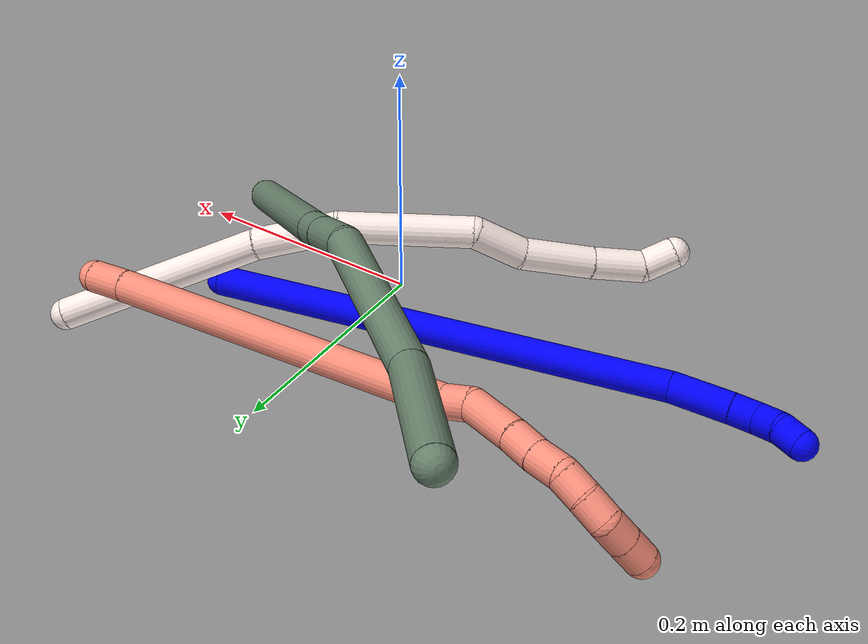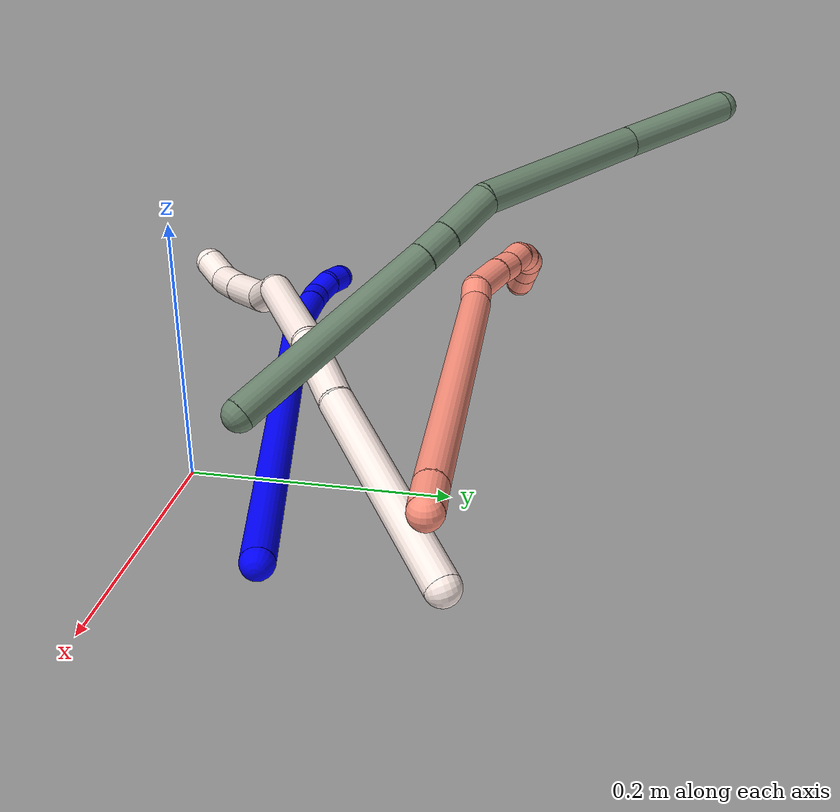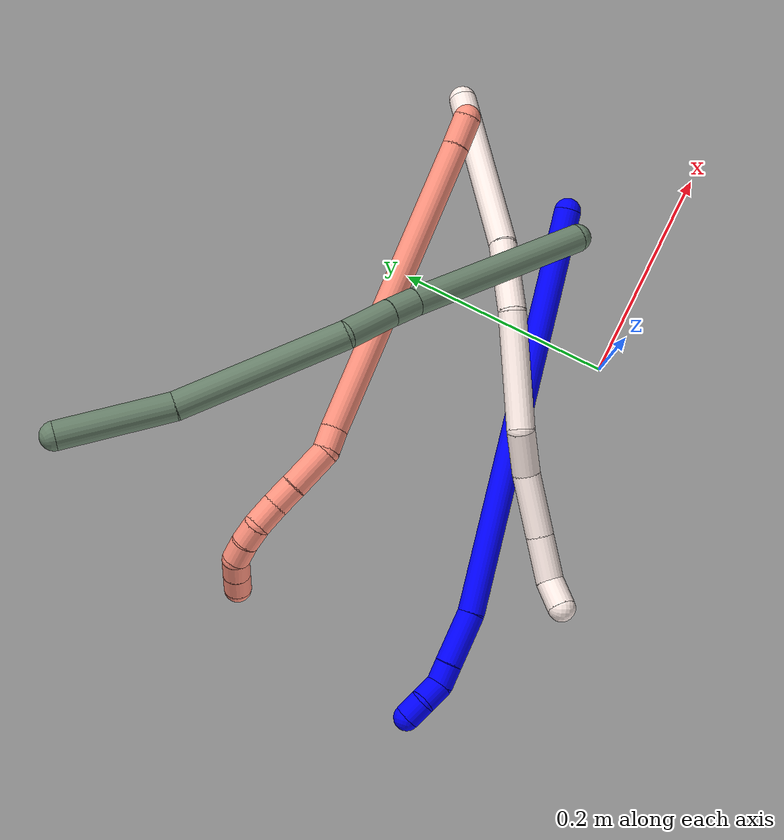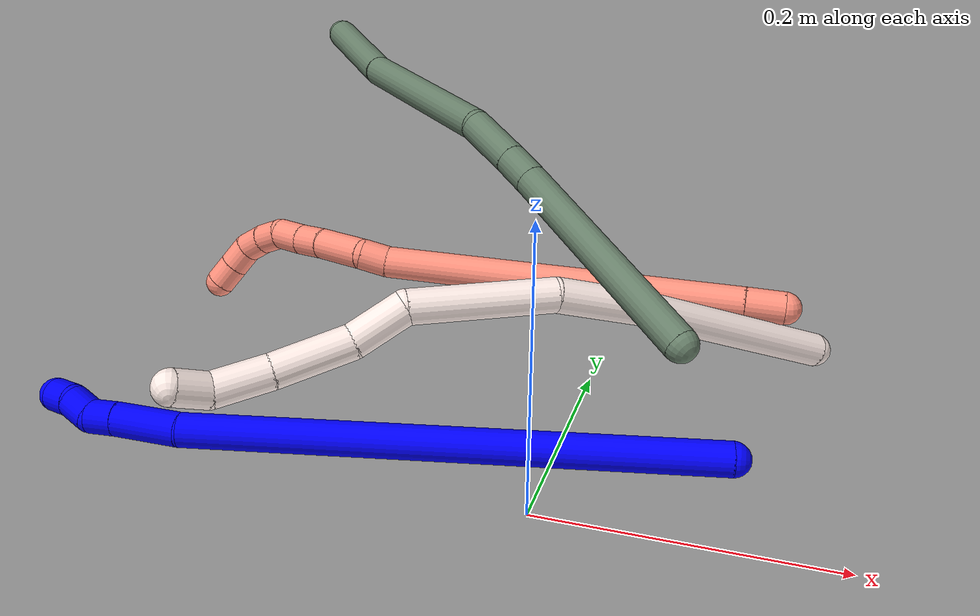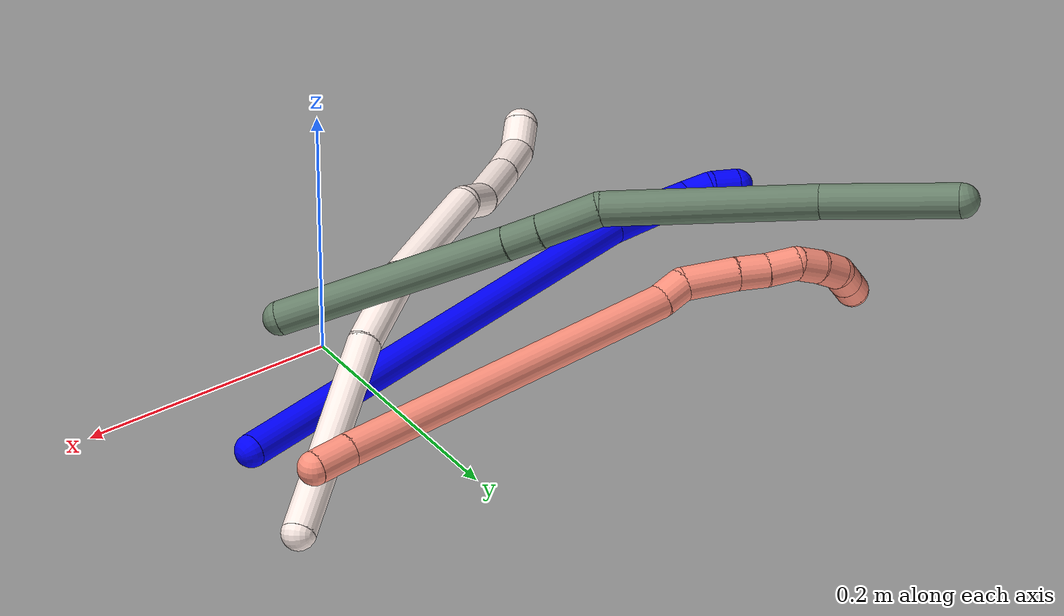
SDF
<sdf version="1.7">
 <world name="default">
  <model name="1">
   <static>0</static>
   <link name="1">
    <collision name="collision-cylinder-e_1_1_4">
     <pose>-0.014626 -0.003808 0.1927 0.019758 -0.075741 -0.000749</pose>
     <geometry><cylinder><radius>0.0125</radius><length>0.386584</length></cylinder></geometry>
     <surface>
      <friction><ode><mu>1.16</mu><mu2>1.16</mu2><slip1>0</slip1><slip2>0</slip2></ode></friction>
      <contact><ode><kp>1e+06</kp><kd>1</kd><max_vel>0</max_vel><min_depth>0.001</min_depth></ode></contact>
     </surface>
    </collision>
    <visual name="visual-cylinder-e_1_1_4">
     <pose>-0.014626 -0.003808 0.1927 0.019758 -0.075741 -0.000749</pose>
     <geometry><cylinder><radius>0.0125</radius><length>0.386584</length></cylinder></geometry>
     <material><ambient>0 0 1 1</ambient></material>
    </visual>
    <collision name="collision-cylinder-e_2_4_5">
     <pose>-0.027464 -0.005279 0.410327 -0.093455 0.071302 -0.003336</pose>
     <geometry><cylinder><radius>0.0125</radius><length>0.0502</length></cylinder></geometry>
     <surface>
      <friction><ode><mu>1.16</mu><mu2>1.16</mu2><slip1>0</slip1><slip2>0</slip2></ode></friction>
      <contact><ode><kp>1e+06</kp><kd>1</kd><max_vel>0</max_vel><min_depth>0.001</min_depth></ode></contact>
     </surface>
    </collision>
    <visual name="visual-cylinder-e_2_4_5">
     <pose>-0.027464 -0.005279 0.410327 -0.093455 0.071302 -0.003336</pose>
     <geometry><cylinder><radius>0.0125</radius><length>0.0502</length></cylinder></geometry>
     <material><ambient>0 0 1 1</ambient></material>
    </visual>
    <collision name="collision-cylinder-e_3_5_6">
     <pose>-0.025376 -0.001631 0.445723 -0.124664 0.028454 -0.001776</pose>
     <geometry><cylinder><radius>0.0125</radius><length>0.02111</length></cylinder></geometry>
     <surface>
      <friction><ode><mu>1.16</mu><mu2>1.16</mu2><slip1>0</slip1><slip2>0</slip2></ode></friction>
      <contact><ode><kp>1e+06</kp><kd>1</kd><max_vel>0</max_vel><min_depth>0.001</min_depth></ode></contact>
     </surface>
    </collision>
    <visual name="visual-cylinder-e_3_5_6">
     <pose>-0.025376 -0.001631 0.445723 -0.124664 0.028454 -0.001776</pose>
     <geometry><cylinder><radius>0.0125</radius><length>0.02111</length></cylinder></geometry>
     <material><ambient>0 0 1 1</ambient></material>
    </visual>
    <collision name="collision-cylinder-e_4_6_7">
     <pose>-0.019667 0.001277 0.465626 -0.167641 0.514419 -0.044192</pose>
     <geometry><cylinder><radius>0.0125</radius><length>0.021984</length></cylinder></geometry>
     <surface>
      <friction><ode><mu>1.16</mu><mu2>1.16</mu2><slip1>0</slip1><slip2>0</slip2></ode></friction>
      <contact><ode><kp>1e+06</kp><kd>1</kd><max_vel>0</max_vel><min_depth>0.001</min_depth></ode></contact>
     </surface>
    </collision>
    <visual name="visual-cylinder-e_4_6_7">
     <pose>-0.019667 0.001277 0.465626 -0.167641 0.514419 -0.044192</pose>
     <geometry><cylinder><radius>0.0125</radius><length>0.021984</length></cylinder></geometry>
     <material><ambient>0 0 1 1</ambient></material>
    </visual>
    <collision name="collision-cylinder-e_5_7_2">
     <pose>-0.011548 0.006767 0.483935 -0.413401 0.272726 -0.057531</pose>
     <geometry><cylinder><radius>0.0125</radius><length>0.020123</length></cylinder></geometry>
     <surface>
      <friction><ode><mu>1.16</mu><mu2>1.16</mu2><slip1>0</slip1><slip2>0</slip2></ode></friction>
      <contact><ode><kp>1e+06</kp><kd>1</kd><max_vel>0</max_vel><min_depth>0.001</min_depth></ode></contact>
     </surface>
    </collision>
    <visual name="visual-cylinder-e_5_7_2">
     <pose>-0.011548 0.006767 0.483935 -0.413401 0.272726 -0.057531</pose>
     <geometry><cylinder><radius>0.0125</radius><length>0.020123</length></cylinder></geometry>
     <material><ambient>0 0 1 1</ambient></material>
    </visual>
    <collision name="collision-sphere-2">
     <pose>-0.008838 0.010659 0.492808 0 -0 0</pose>
     <geometry><sphere><radius>0.0125</radius></sphere></geometry>
     <surface>
      <friction><ode><mu>1.16</mu><mu2>1.16</mu2><slip1>0</slip1><slip2>0</slip2></ode></friction>
      <contact><ode><kp>1e+06</kp><kd>1</kd><max_vel>0</max_vel><min_depth>0.001</min_depth></ode></contact>
     </surface>
    </collision>
    <visual name="visual-sphere-2">
     <pose>-0.008838 0.010659 0.492808 0 -0 0</pose>
     <geometry><sphere><radius>0.0125</radius></sphere></geometry>
     <material><ambient>0 0 1 1</ambient></material>
    </visual>
    <collision name="collision-sphere-7">
     <pose>-0.014259 0.002874 0.475062 0 -0 0</pose>
     <geometry><sphere><radius>0.0125</radius></sphere></geometry>
     <surface>
      <friction><ode><mu>1.16</mu><mu2>1.16</mu2><slip1>0</slip1><slip2>0</slip2></ode></friction>
      <contact><ode><kp>1e+06</kp><kd>1</kd><max_vel>0</max_vel><min_depth>0.001</min_depth></ode></contact>
     </surface>
    </collision>
    <visual name="visual-sphere-7">
     <pose>-0.014259 0.002874 0.475062 0 -0 0</pose>
     <geometry><sphere><radius>0.0125</radius></sphere></geometry>
     <material><ambient>0 0 1 1</ambient></material>
    </visual>
    <collision name="collision-sphere-6">
     <pose>-0.025075 -0.000319 0.456191 0 -0 0</pose>
     <geometry><sphere><radius>0.0125</radius></sphere></geometry>
     <surface>
      <friction><ode><mu>1.16</mu><mu2>1.16</mu2><slip1>0</slip1><slip2>0</slip2></ode></friction>
      <contact><ode><kp>1e+06</kp><kd>1</kd><max_vel>0</max_vel><min_depth>0.001</min_depth></ode></contact>
     </surface>
    </collision>
    <visual name="visual-sphere-6">
     <pose>-0.025075 -0.000319 0.456191 0 -0 0</pose>
     <geometry><sphere><radius>0.0125</radius></sphere></geometry>
     <material><ambient>0 0 1 1</ambient></material>
    </visual>
    <collision name="collision-sphere-5">
     <pose>-0.025676 -0.002943 0.435254 0 -0 0</pose>
     <geometry><sphere><radius>0.0125</radius></sphere></geometry>
     <surface>
      <friction><ode><mu>1.16</mu><mu2>1.16</mu2><slip1>0</slip1><slip2>0</slip2></ode></friction>
      <contact><ode><kp>1e+06</kp><kd>1</kd><max_vel>0</max_vel><min_depth>0.001</min_depth></ode></contact>
     </surface>
    </collision>
    <visual name="visual-sphere-5">
     <pose>-0.025676 -0.002943 0.435254 0 -0 0</pose>
     <geometry><sphere><radius>0.0125</radius></sphere></geometry>
     <material><ambient>0 0 1 1</ambient></material>
    </visual>
    <collision name="collision-sphere-1">
     <geometry><sphere><radius>0.0125</radius></sphere></geometry>
     <surface>
      <friction><ode><mu>1.16</mu><mu2>1.16</mu2><slip1>0</slip1><slip2>0</slip2></ode></friction>
      <contact><ode><kp>1e+06</kp><kd>1</kd><max_vel>0</max_vel><min_depth>0.001</min_depth></ode></contact>
     </surface>
    </collision>
    <visual name="visual-sphere-1">
     <geometry><sphere><radius>0.0125</radius></sphere></geometry>
     <material><ambient>0 0 1 1</ambient></material>
    </visual>
    <collision name="collision-sphere-4">
     <pose>-0.029252 -0.007616 0.3854 0 -0 0</pose>
     <geometry><sphere><radius>0.0125</radius></sphere></geometry>
     <surface>
      <friction><ode><mu>1.16</mu><mu2>1.16</mu2><slip1>0</slip1><slip2>0</slip2></ode></friction>
      <contact><ode><kp>1e+06</kp><kd>1</kd><max_vel>0</max_vel><min_depth>0.001</min_depth></ode></contact>
     </surface>
    </collision>
    <visual name="visual-sphere-4">
     <pose>-0.029252 -0.007616 0.3854 0 -0 0</pose>
     <geometry><sphere><radius>0.0125</radius></sphere></geometry>
     <material><ambient>0 0 1 1</ambient></material>
    </visual>
    <inertial>
     <pose>-0.016467 -0.003214 0.248953 0 -0 0</pose>
     <mass>0.5</mass>
     <inertia>
      <ixx>0.004828</ixx>
      <ixy>0</ixy>
      <ixz>0</ixz>
      <iyy>0.004843</iyy>
      <iyz>0</iyz>
      <izz>0.000495</izz>
     </inertia>
    </inertial>
   </link>
   <pose>0.120354 0.092074 0.011491 -1.52139 -0.738833 1.68665</pose>
  </model>
  <model name="11">
   <static>0</static>
   <link name="11">
    <collision name="collision-cylinder-e_1_1_4">
     <pose>-0.03276 -0.073902 -0.008542 1.68587 -0.414803 -0.463804</pose>
     <geometry><cylinder><radius>0.0125</radius><length>0.162574</length></cylinder></geometry>
     <surface>
      <friction><ode><mu>1.16</mu><mu2>1.16</mu2><slip1>0</slip1><slip2>0</slip2></ode></friction>
      <contact><ode><kp>1e+06</kp><kd>1</kd><max_vel>0</max_vel><min_depth>0.001</min_depth></ode></contact>
     </surface>
    </collision>
    <visual name="visual-cylinder-e_1_1_4">
     <pose>-0.03276 -0.073902 -0.008542 1.68587 -0.414803 -0.463804</pose>
     <geometry><cylinder><radius>0.0125</radius><length>0.162574</length></cylinder></geometry>
     <material><ambient>1 0.933333 0.909804 1</ambient></material>
    </visual>
    <collision name="collision-cylinder-e_2_4_5">
     <pose>-0.08274 -0.17603 -0.018203 1.61043 -0.547458 -0.568447</pose>
     <geometry><cylinder><radius>0.0125</radius><length>0.066169</length></cylinder></geometry>
     <surface>
      <friction><ode><mu>1.16</mu><mu2>1.16</mu2><slip1>0</slip1><slip2>0</slip2></ode></friction>
      <contact><ode><kp>1e+06</kp><kd>1</kd><max_vel>0</max_vel><min_depth>0.001</min_depth></ode></contact>
     </surface>
    </collision>
    <visual name="visual-cylinder-e_2_4_5">
     <pose>-0.08274 -0.17603 -0.018203 1.61043 -0.547458 -0.568447</pose>
     <geometry><cylinder><radius>0.0125</radius><length>0.066169</length></cylinder></geometry>
     <material><ambient>1 0.933333 0.909804 1</ambient></material>
    </visual>
    <collision name="collision-cylinder-e_3_5_6">
     <pose>-0.137594 -0.240393 -0.02207 1.64669 -0.804251 -0.860407</pose>
     <geometry><cylinder><radius>0.0125</radius><length>0.10449</length></cylinder></geometry>
     <surface>
      <friction><ode><mu>1.16</mu><mu2>1.16</mu2><slip1>0</slip1><slip2>0</slip2></ode></friction>
      <contact><ode><kp>1e+06</kp><kd>1</kd><max_vel>0</max_vel><min_depth>0.001</min_depth></ode></contact>
     </surface>
    </collision>
    <visual name="visual-cylinder-e_3_5_6">
     <pose>-0.137594 -0.240393 -0.02207 1.64669 -0.804251 -0.860407</pose>
     <geometry><cylinder><radius>0.0125</radius><length>0.10449</length></cylinder></geometry>
     <material><ambient>1 0.933333 0.909804 1</ambient></material>
    </visual>
    <collision name="collision-cylinder-e_4_6_7">
     <pose>-0.194731 -0.282156 -0.02983 2.29836 -1.20208 -1.98305</pose>
     <geometry><cylinder><radius>0.0125</radius><length>0.04182</length></cylinder></geometry>
     <surface>
      <friction><ode><mu>1.16</mu><mu2>1.16</mu2><slip1>0</slip1><slip2>0</slip2></ode></friction>
      <contact><ode><kp>1e+06</kp><kd>1</kd><max_vel>0</max_vel><min_depth>0.001</min_depth></ode></contact>
     </surface>
    </collision>
    <visual name="visual-cylinder-e_4_6_7">
     <pose>-0.194731 -0.282156 -0.02983 2.29836 -1.20208 -1.98305</pose>
     <geometry><cylinder><radius>0.0125</radius><length>0.04182</length></cylinder></geometry>
     <material><ambient>1 0.933333 0.909804 1</ambient></material>
    </visual>
    <collision name="collision-cylinder-e_5_7_8">
     <pose>-0.237146 -0.302964 -0.042049 2.01405 -0.937977 -1.35126</pose>
     <geometry><cylinder><radius>0.0125</radius><length>0.056824</length></cylinder></geometry>
     <surface>
      <friction><ode><mu>1.16</mu><mu2>1.16</mu2><slip1>0</slip1><slip2>0</slip2></ode></friction>
      <contact><ode><kp>1e+06</kp><kd>1</kd><max_vel>0</max_vel><min_depth>0.001</min_depth></ode></contact>
     </surface>
    </collision>
    <visual name="visual-cylinder-e_5_7_8">
     <pose>-0.237146 -0.302964 -0.042049 2.01405 -0.937977 -1.35126</pose>
     <geometry><cylinder><radius>0.0125</radius><length>0.056824</length></cylinder></geometry>
     <material><ambient>1 0.933333 0.909804 1</ambient></material>
    </visual>
    <collision name="collision-cylinder-e_6_8_9">
     <pose>-0.276047 -0.330292 -0.054188 1.95654 -0.884003 -1.22539</pose>
     <geometry><cylinder><radius>0.0125</radius><length>0.041357</length></cylinder></geometry>
     <surface>
      <friction><ode><mu>1.16</mu><mu2>1.16</mu2><slip1>0</slip1><slip2>0</slip2></ode></friction>
      <contact><ode><kp>1e+06</kp><kd>1</kd><max_vel>0</max_vel><min_depth>0.001</min_depth></ode></contact>
     </surface>
    </collision>
    <visual name="visual-cylinder-e_6_8_9">
     <pose>-0.276047 -0.330292 -0.054188 1.95654 -0.884003 -1.22539</pose>
     <geometry><cylinder><radius>0.0125</radius><length>0.041357</length></cylinder></geometry>
     <material><ambient>1 0.933333 0.909804 1</ambient></material>
    </visual>
    <collision name="collision-cylinder-e_7_9_2">
     <pose>-0.297005 -0.354388 -0.062535 1.84906 -0.380348 -0.499722</pose>
     <geometry><cylinder><radius>0.0125</radius><length>0.026766</length></cylinder></geometry>
     <surface>
      <friction><ode><mu>1.16</mu><mu2>1.16</mu2><slip1>0</slip1><slip2>0</slip2></ode></friction>
      <contact><ode><kp>1e+06</kp><kd>1</kd><max_vel>0</max_vel><min_depth>0.001</min_depth></ode></contact>
     </surface>
    </collision>
    <visual name="visual-cylinder-e_7_9_2">
     <pose>-0.297005 -0.354388 -0.062535 1.84906 -0.380348 -0.499722</pose>
     <geometry><cylinder><radius>0.0125</radius><length>0.026766</length></cylinder></geometry>
     <material><ambient>1 0.933333 0.909804 1</ambient></material>
    </visual>
    <collision name="collision-sphere-2">
     <pose>-0.301974 -0.366337 -0.065948 0 -0 0</pose>
     <geometry><sphere><radius>0.0125</radius></sphere></geometry>
     <surface>
      <friction><ode><mu>1.16</mu><mu2>1.16</mu2><slip1>0</slip1><slip2>0</slip2></ode></friction>
      <contact><ode><kp>1e+06</kp><kd>1</kd><max_vel>0</max_vel><min_depth>0.001</min_depth></ode></contact>
     </surface>
    </collision>
    <visual name="visual-sphere-2">
     <pose>-0.301974 -0.366337 -0.065948 0 -0 0</pose>
     <geometry><sphere><radius>0.0125</radius></sphere></geometry>
     <material><ambient>1 0.933333 0.909804 1</ambient></material>
    </visual>
    <collision name="collision-sphere-9">
     <pose>-0.292037 -0.342439 -0.059121 0 -0 0</pose>
     <geometry><sphere><radius>0.0125</radius></sphere></geometry>
     <surface>
      <friction><ode><mu>1.16</mu><mu2>1.16</mu2><slip1>0</slip1><slip2>0</slip2></ode></friction>
      <contact><ode><kp>1e+06</kp><kd>1</kd><max_vel>0</max_vel><min_depth>0.001</min_depth></ode></contact>
     </surface>
    </collision>
    <visual name="visual-sphere-9">
     <pose>-0.292037 -0.342439 -0.059121 0 -0 0</pose>
     <geometry><sphere><radius>0.0125</radius></sphere></geometry>
     <material><ambient>1 0.933333 0.909804 1</ambient></material>
    </visual>
    <collision name="collision-sphere-4">
     <pose>-0.065519 -0.147803 -0.017084 0 -0 0</pose>
     <geometry><sphere><radius>0.0125</radius></sphere></geometry>
     <surface>
      <friction><ode><mu>1.16</mu><mu2>1.16</mu2><slip1>0</slip1><slip2>0</slip2></ode></friction>
      <contact><ode><kp>1e+06</kp><kd>1</kd><max_vel>0</max_vel><min_depth>0.001</min_depth></ode></contact>
     </surface>
    </collision>
    <visual name="visual-sphere-4">
     <pose>-0.065519 -0.147803 -0.017084 0 -0 0</pose>
     <geometry><sphere><radius>0.0125</radius></sphere></geometry>
     <material><ambient>1 0.933333 0.909804 1</ambient></material>
    </visual>
    <collision name="collision-sphere-1">
     <geometry><sphere><radius>0.0125</radius></sphere></geometry>
     <surface>
      <friction><ode><mu>1.16</mu><mu2>1.16</mu2><slip1>0</slip1><slip2>0</slip2></ode></friction>
      <contact><ode><kp>1e+06</kp><kd>1</kd><max_vel>0</max_vel><min_depth>0.001</min_depth></ode></contact>
     </surface>
    </collision>
    <visual name="visual-sphere-1">
     <geometry><sphere><radius>0.0125</radius></sphere></geometry>
     <material><ambient>1 0.933333 0.909804 1</ambient></material>
    </visual>
    <collision name="collision-sphere-8">
     <pose>-0.260057 -0.318144 -0.049255 0 -0 0</pose>
     <geometry><sphere><radius>0.0125</radius></sphere></geometry>
     <surface>
      <friction><ode><mu>1.16</mu><mu2>1.16</mu2><slip1>0</slip1><slip2>0</slip2></ode></friction>
      <contact><ode><kp>1e+06</kp><kd>1</kd><max_vel>0</max_vel><min_depth>0.001</min_depth></ode></contact>
     </surface>
    </collision>
    <visual name="visual-sphere-8">
     <pose>-0.260057 -0.318144 -0.049255 0 -0 0</pose>
     <geometry><sphere><radius>0.0125</radius></sphere></geometry>
     <material><ambient>1 0.933333 0.909804 1</ambient></material>
    </visual>
    <collision name="collision-sphere-5">
     <pose>-0.099961 -0.204257 -0.019322 0 -0 0</pose>
     <geometry><sphere><radius>0.0125</radius></sphere></geometry>
     <surface>
      <friction><ode><mu>1.16</mu><mu2>1.16</mu2><slip1>0</slip1><slip2>0</slip2></ode></friction>
      <contact><ode><kp>1e+06</kp><kd>1</kd><max_vel>0</max_vel><min_depth>0.001</min_depth></ode></contact>
     </surface>
    </collision>
    <visual name="visual-sphere-5">
     <pose>-0.099961 -0.204257 -0.019322 0 -0 0</pose>
     <geometry><sphere><radius>0.0125</radius></sphere></geometry>
     <material><ambient>1 0.933333 0.909804 1</ambient></material>
    </visual>
    <collision name="collision-sphere-6">
     <pose>-0.175227 -0.276528 -0.024818 0 -0 0</pose>
     <geometry><sphere><radius>0.0125</radius></sphere></geometry>
     <surface>
      <friction><ode><mu>1.16</mu><mu2>1.16</mu2><slip1>0</slip1><slip2>0</slip2></ode></friction>
      <contact><ode><kp>1e+06</kp><kd>1</kd><max_vel>0</max_vel><min_depth>0.001</min_depth></ode></contact>
     </surface>
    </collision>
    <visual name="visual-sphere-6">
     <pose>-0.175227 -0.276528 -0.024818 0 -0 0</pose>
     <geometry><sphere><radius>0.0125</radius></sphere></geometry>
     <material><ambient>1 0.933333 0.909804 1</ambient></material>
    </visual>
    <collision name="collision-sphere-7">
     <pose>-0.214236 -0.287785 -0.034842 0 -0 0</pose>
     <geometry><sphere><radius>0.0125</radius></sphere></geometry>
     <surface>
      <friction><ode><mu>1.16</mu><mu2>1.16</mu2><slip1>0</slip1><slip2>0</slip2></ode></friction>
      <contact><ode><kp>1e+06</kp><kd>1</kd><max_vel>0</max_vel><min_depth>0.001</min_depth></ode></contact>
     </surface>
    </collision>
    <visual name="visual-sphere-7">
     <pose>-0.214236 -0.287785 -0.034842 0 -0 0</pose>
     <geometry><sphere><radius>0.0125</radius></sphere></geometry>
     <material><ambient>1 0.933333 0.909804 1</ambient></material>
    </visual>
    <inertial>
     <pose>-0.132326 -0.201883 -0.024902 0 -0 0</pose>
     <mass>0.5</mass>
     <inertia>
      <ixx>0.000112</ixx>
      <ixy>0</ixy>
      <ixz>0</ixz>
      <iyy>-0.000155</iyy>
      <iyz>0</iyz>
      <izz>0.000696</izz>
     </inertia>
    </inertial>
   </link>
   <pose>0.165459 0.22511 0.040488 -1.24752 -0.726379 0.2512</pose>
  </model>
  <model name="16">
   <static>0</static>
   <link name="16">
    <collision name="collision-cylinder-e_1_1_4">
     <pose>-0.014421 0.002399 -0.000546 -1.7944 -1.4018 1.62645</pose>
     <geometry><cylinder><radius>0.0125</radius><length>0.029259</length></cylinder></geometry>
     <surface>
      <friction><ode><mu>1.16</mu><mu2>1.16</mu2><slip1>0</slip1><slip2>0</slip2></ode></friction>
      <contact><ode><kp>1e+06</kp><kd>1</kd><max_vel>0</max_vel><min_depth>0.001</min_depth></ode></contact>
     </surface>
    </collision>
    <visual name="visual-cylinder-e_1_1_4">
     <pose>-0.014421 0.002399 -0.000546 -1.7944 -1.4018 1.62645</pose>
     <geometry><cylinder><radius>0.0125</radius><length>0.029259</length></cylinder></geometry>
     <material><ambient>1 0.576471 0.494118 1</ambient></material>
    </visual>
    <collision name="collision-cylinder-e_2_4_5">
     <pose>-0.166201 0.030691 -0.009298 -1.87775 -1.37557 1.68595</pose>
     <geometry><cylinder><radius>0.0125</radius><length>0.280037</length></cylinder></geometry>
     <surface>
      <friction><ode><mu>1.16</mu><mu2>1.16</mu2><slip1>0</slip1><slip2>0</slip2></ode></friction>
      <contact><ode><kp>1e+06</kp><kd>1</kd><max_vel>0</max_vel><min_depth>0.001</min_depth></ode></contact>
     </surface>
    </collision>
    <visual name="visual-cylinder-e_2_4_5">
     <pose>-0.166201 0.030691 -0.009298 -1.87775 -1.37557 1.68595</pose>
     <geometry><cylinder><radius>0.0125</radius><length>0.280037</length></cylinder></geometry>
     <material><ambient>1 0.576471 0.494118 1</ambient></material>
    </visual>
    <collision name="collision-cylinder-e_3_5_6">
     <pose>-0.314362 0.0579 -0.015751 -0.64406 -1.37047 0.532466</pose>
     <geometry><cylinder><radius>0.0125</radius><length>0.022045</length></cylinder></geometry>
     <surface>
      <friction><ode><mu>1.16</mu><mu2>1.16</mu2><slip1>0</slip1><slip2>0</slip2></ode></friction>
      <contact><ode><kp>1e+06</kp><kd>1</kd><max_vel>0</max_vel><min_depth>0.001</min_depth></ode></contact>
     </surface>
    </collision>
    <visual name="visual-cylinder-e_3_5_6">
     <pose>-0.314362 0.0579 -0.015751 -0.64406 -1.37047 0.532466</pose>
     <geometry><cylinder><radius>0.0125</radius><length>0.022045</length></cylinder></geometry>
     <material><ambient>1 0.576471 0.494118 1</ambient></material>
    </visual>
    <collision name="collision-cylinder-e_4_6_7">
     <pose>-0.342842 0.069752 -0.01539 -1.70221 -1.02955 1.14617</pose>
     <geometry><cylinder><radius>0.0125</radius><length>0.041252</length></cylinder></geometry>
     <surface>
      <friction><ode><mu>1.16</mu><mu2>1.16</mu2><slip1>0</slip1><slip2>0</slip2></ode></friction>
      <contact><ode><kp>1e+06</kp><kd>1</kd><max_vel>0</max_vel><min_depth>0.001</min_depth></ode></contact>
     </surface>
    </collision>
    <visual name="visual-cylinder-e_4_6_7">
     <pose>-0.342842 0.069752 -0.01539 -1.70221 -1.02955 1.14617</pose>
     <geometry><cylinder><radius>0.0125</radius><length>0.041252</length></cylinder></geometry>
     <material><ambient>1 0.576471 0.494118 1</ambient></material>
    </visual>
    <collision name="collision-cylinder-e_5_7_8">
     <pose>-0.37019 0.086433 -0.018318 -1.81569 -0.990774 1.21065</pose>
     <geometry><cylinder><radius>0.0125</radius><length>0.023121</length></cylinder></geometry>
     <surface>
      <friction><ode><mu>1.16</mu><mu2>1.16</mu2><slip1>0</slip1><slip2>0</slip2></ode></friction>
      <contact><ode><kp>1e+06</kp><kd>1</kd><max_vel>0</max_vel><min_depth>0.001</min_depth></ode></contact>
     </surface>
    </collision>
    <visual name="visual-cylinder-e_5_7_8">
     <pose>-0.37019 0.086433 -0.018318 -1.81569 -0.990774 1.21065</pose>
     <geometry><cylinder><radius>0.0125</radius><length>0.023121</length></cylinder></geometry>
     <material><ambient>1 0.576471 0.494118 1</ambient></material>
    </visual>
    <collision name="collision-cylinder-e_6_8_9">
     <pose>-0.390311 0.098385 -0.020405 -1.66534 -1.06189 1.14642</pose>
     <geometry><cylinder><radius>0.0125</radius><length>0.023937</length></cylinder></geometry>
     <surface>
      <friction><ode><mu>1.16</mu><mu2>1.16</mu2><slip1>0</slip1><slip2>0</slip2></ode></friction>
      <contact><ode><kp>1e+06</kp><kd>1</kd><max_vel>0</max_vel><min_depth>0.001</min_depth></ode></contact>
     </surface>
    </collision>
    <visual name="visual-cylinder-e_6_8_9">
     <pose>-0.390311 0.098385 -0.020405 -1.66534 -1.06189 1.14642</pose>
     <geometry><cylinder><radius>0.0125</radius><length>0.023937</length></cylinder></geometry>
     <material><ambient>1 0.576471 0.494118 1</ambient></material>
    </visual>
    <collision name="collision-cylinder-e_7_9_10">
     <pose>-0.408793 0.108038 -0.025671 -2.45726 -0.922236 1.89767</pose>
     <geometry><cylinder><radius>0.0125</radius><length>0.020152</length></cylinder></geometry>
     <surface>
      <friction><ode><mu>1.16</mu><mu2>1.16</mu2><slip1>0</slip1><slip2>0</slip2></ode></friction>
      <contact><ode><kp>1e+06</kp><kd>1</kd><max_vel>0</max_vel><min_depth>0.001</min_depth></ode></contact>
     </surface>
    </collision>
    <visual name="visual-cylinder-e_7_9_10">
     <pose>-0.408793 0.108038 -0.025671 -2.45726 -0.922236 1.89767</pose>
     <geometry><cylinder><radius>0.0125</radius><length>0.020152</length></cylinder></geometry>
     <material><ambient>1 0.576471 0.494118 1</ambient></material>
    </visual>
    <collision name="collision-cylinder-e_8_10_11">
     <pose>-0.424434 0.114648 -0.036387 -2.71003 -0.856039 2.24583</pose>
     <geometry><cylinder><radius>0.0125</radius><length>0.020153</length></cylinder></geometry>
     <surface>
      <friction><ode><mu>1.16</mu><mu2>1.16</mu2><slip1>0</slip1><slip2>0</slip2></ode></friction>
      <contact><ode><kp>1e+06</kp><kd>1</kd><max_vel>0</max_vel><min_depth>0.001</min_depth></ode></contact>
     </surface>
    </collision>
    <visual name="visual-cylinder-e_8_10_11">
     <pose>-0.424434 0.114648 -0.036387 -2.71003 -0.856039 2.24583</pose>
     <geometry><cylinder><radius>0.0125</radius><length>0.020153</length></cylinder></geometry>
     <material><ambient>1 0.576471 0.494118 1</ambient></material>
    </visual>
    <collision name="collision-cylinder-e_9_11_12">
     <pose>-0.437721 0.116103 -0.050525 2.98228 -0.603044 -2.63909</pose>
     <geometry><cylinder><radius>0.0125</radius><length>0.020018</length></cylinder></geometry>
     <surface>
      <friction><ode><mu>1.16</mu><mu2>1.16</mu2><slip1>0</slip1><slip2>0</slip2></ode></friction>
      <contact><ode><kp>1e+06</kp><kd>1</kd><max_vel>0</max_vel><min_depth>0.001</min_depth></ode></contact>
     </surface>
    </collision>
    <visual name="visual-cylinder-e_9_11_12">
     <pose>-0.437721 0.116103 -0.050525 2.98228 -0.603044 -2.63909</pose>
     <geometry><cylinder><radius>0.0125</radius><length>0.020018</length></cylinder></geometry>
     <material><ambient>1 0.576471 0.494118 1</ambient></material>
    </visual>
    <collision name="collision-cylinder-e_10_12_2">
     <pose>-0.449051 0.113409 -0.06681 2.97303 -0.599996 -2.60838</pose>
     <geometry><cylinder><radius>0.0125</radius><length>0.020025</length></cylinder></geometry>
     <surface>
      <friction><ode><mu>1.16</mu><mu2>1.16</mu2><slip1>0</slip1><slip2>0</slip2></ode></friction>
      <contact><ode><kp>1e+06</kp><kd>1</kd><max_vel>0</max_vel><min_depth>0.001</min_depth></ode></contact>
     </surface>
    </collision>
    <visual name="visual-cylinder-e_10_12_2">
     <pose>-0.449051 0.113409 -0.06681 2.97303 -0.599996 -2.60838</pose>
     <geometry><cylinder><radius>0.0125</radius><length>0.020025</length></cylinder></geometry>
     <material><ambient>1 0.576471 0.494118 1</ambient></material>
    </visual>
    <collision name="collision-sphere-2">
     <pose>-0.454705 0.112022 -0.074957 0 -0 0</pose>
     <geometry><sphere><radius>0.0125</radius></sphere></geometry>
     <surface>
      <friction><ode><mu>1.16</mu><mu2>1.16</mu2><slip1>0</slip1><slip2>0</slip2></ode></friction>
      <contact><ode><kp>1e+06</kp><kd>1</kd><max_vel>0</max_vel><min_depth>0.001</min_depth></ode></contact>
     </surface>
    </collision>
    <visual name="visual-sphere-2">
     <pose>-0.454705 0.112022 -0.074957 0 -0 0</pose>
     <geometry><sphere><radius>0.0125</radius></sphere></geometry>
     <material><ambient>1 0.576471 0.494118 1</ambient></material>
    </visual>
    <collision name="collision-sphere-12">
     <pose>-0.443398 0.114795 -0.058664 0 -0 0</pose>
     <geometry><sphere><radius>0.0125</radius></sphere></geometry>
     <surface>
      <friction><ode><mu>1.16</mu><mu2>1.16</mu2><slip1>0</slip1><slip2>0</slip2></ode></friction>
      <contact><ode><kp>1e+06</kp><kd>1</kd><max_vel>0</max_vel><min_depth>0.001</min_depth></ode></contact>
     </surface>
    </collision>
    <visual name="visual-sphere-12">
     <pose>-0.443398 0.114795 -0.058664 0 -0 0</pose>
     <geometry><sphere><radius>0.0125</radius></sphere></geometry>
     <material><ambient>1 0.576471 0.494118 1</ambient></material>
    </visual>
    <collision name="collision-sphere-11">
     <pose>-0.432045 0.117411 -0.042386 0 -0 0</pose>
     <geometry><sphere><radius>0.0125</radius></sphere></geometry>
     <surface>
      <friction><ode><mu>1.16</mu><mu2>1.16</mu2><slip1>0</slip1><slip2>0</slip2></ode></friction>
      <contact><ode><kp>1e+06</kp><kd>1</kd><max_vel>0</max_vel><min_depth>0.001</min_depth></ode></contact>
     </surface>
    </collision>
    <visual name="visual-sphere-11">
     <pose>-0.432045 0.117411 -0.042386 0 -0 0</pose>
     <geometry><sphere><radius>0.0125</radius></sphere></geometry>
     <material><ambient>1 0.576471 0.494118 1</ambient></material>
    </visual>
    <collision name="collision-sphere-10">
     <pose>-0.416824 0.111885 -0.030387 0 -0 0</pose>
     <geometry><sphere><radius>0.0125</radius></sphere></geometry>
     <surface>
      <friction><ode><mu>1.16</mu><mu2>1.16</mu2><slip1>0</slip1><slip2>0</slip2></ode></friction>
      <contact><ode><kp>1e+06</kp><kd>1</kd><max_vel>0</max_vel><min_depth>0.001</min_depth></ode></contact>
     </surface>
    </collision>
    <visual name="visual-sphere-10">
     <pose>-0.416824 0.111885 -0.030387 0 -0 0</pose>
     <geometry><sphere><radius>0.0125</radius></sphere></geometry>
     <material><ambient>1 0.576471 0.494118 1</ambient></material>
    </visual>
    <collision name="collision-sphere-9">
     <pose>-0.400763 0.10419 -0.020955 0 -0 0</pose>
     <geometry><sphere><radius>0.0125</radius></sphere></geometry>
     <surface>
      <friction><ode><mu>1.16</mu><mu2>1.16</mu2><slip1>0</slip1><slip2>0</slip2></ode></friction>
      <contact><ode><kp>1e+06</kp><kd>1</kd><max_vel>0</max_vel><min_depth>0.001</min_depth></ode></contact>
     </surface>
    </collision>
    <visual name="visual-sphere-9">
     <pose>-0.400763 0.10419 -0.020955 0 -0 0</pose>
     <geometry><sphere><radius>0.0125</radius></sphere></geometry>
     <material><ambient>1 0.576471 0.494118 1</ambient></material>
    </visual>
    <collision name="collision-sphere-4">
     <pose>-0.028842 0.004799 -0.001091 0 -0 0</pose>
     <geometry><sphere><radius>0.0125</radius></sphere></geometry>
     <surface>
      <friction><ode><mu>1.16</mu><mu2>1.16</mu2><slip1>0</slip1><slip2>0</slip2></ode></friction>
      <contact><ode><kp>1e+06</kp><kd>1</kd><max_vel>0</max_vel><min_depth>0.001</min_depth></ode></contact>
     </surface>
    </collision>
    <visual name="visual-sphere-4">
     <pose>-0.028842 0.004799 -0.001091 0 -0 0</pose>
     <geometry><sphere><radius>0.0125</radius></sphere></geometry>
     <material><ambient>1 0.576471 0.494118 1</ambient></material>
    </visual>
    <collision name="collision-sphere-1">
     <geometry><sphere><radius>0.0125</radius></sphere></geometry>
     <surface>
      <friction><ode><mu>1.16</mu><mu2>1.16</mu2><slip1>0</slip1><slip2>0</slip2></ode></friction>
      <contact><ode><kp>1e+06</kp><kd>1</kd><max_vel>0</max_vel><min_depth>0.001</min_depth></ode></contact>
     </surface>
    </collision>
    <visual name="visual-sphere-1">
     <geometry><sphere><radius>0.0125</radius></sphere></geometry>
     <material><ambient>1 0.576471 0.494118 1</ambient></material>
    </visual>
    <collision name="collision-sphere-8">
     <pose>-0.379859 0.09258 -0.019854 0 -0 0</pose>
     <geometry><sphere><radius>0.0125</radius></sphere></geometry>
     <surface>
      <friction><ode><mu>1.16</mu><mu2>1.16</mu2><slip1>0</slip1><slip2>0</slip2></ode></friction>
      <contact><ode><kp>1e+06</kp><kd>1</kd><max_vel>0</max_vel><min_depth>0.001</min_depth></ode></contact>
     </surface>
    </collision>
    <visual name="visual-sphere-8">
     <pose>-0.379859 0.09258 -0.019854 0 -0 0</pose>
     <geometry><sphere><radius>0.0125</radius></sphere></geometry>
     <material><ambient>1 0.576471 0.494118 1</ambient></material>
    </visual>
    <collision name="collision-sphere-5">
     <pose>-0.30356 0.056583 -0.017505 0 -0 0</pose>
     <geometry><sphere><radius>0.0125</radius></sphere></geometry>
     <surface>
      <friction><ode><mu>1.16</mu><mu2>1.16</mu2><slip1>0</slip1><slip2>0</slip2></ode></friction>
      <contact><ode><kp>1e+06</kp><kd>1</kd><max_vel>0</max_vel><min_depth>0.001</min_depth></ode></contact>
     </surface>
    </collision>
    <visual name="visual-sphere-5">
     <pose>-0.30356 0.056583 -0.017505 0 -0 0</pose>
     <geometry><sphere><radius>0.0125</radius></sphere></geometry>
     <material><ambient>1 0.576471 0.494118 1</ambient></material>
    </visual>
    <collision name="collision-sphere-6">
     <pose>-0.325164 0.059217 -0.013997 0 -0 0</pose>
     <geometry><sphere><radius>0.0125</radius></sphere></geometry>
     <surface>
      <friction><ode><mu>1.16</mu><mu2>1.16</mu2><slip1>0</slip1><slip2>0</slip2></ode></friction>
      <contact><ode><kp>1e+06</kp><kd>1</kd><max_vel>0</max_vel><min_depth>0.001</min_depth></ode></contact>
     </surface>
    </collision>
    <visual name="visual-sphere-6">
     <pose>-0.325164 0.059217 -0.013997 0 -0 0</pose>
     <geometry><sphere><radius>0.0125</radius></sphere></geometry>
     <material><ambient>1 0.576471 0.494118 1</ambient></material>
    </visual>
    <collision name="collision-sphere-7">
     <pose>-0.36052 0.080287 -0.016782 0 -0 0</pose>
     <geometry><sphere><radius>0.0125</radius></sphere></geometry>
     <surface>
      <friction><ode><mu>1.16</mu><mu2>1.16</mu2><slip1>0</slip1><slip2>0</slip2></ode></friction>
      <contact><ode><kp>1e+06</kp><kd>1</kd><max_vel>0</max_vel><min_depth>0.001</min_depth></ode></contact>
     </surface>
    </collision>
    <visual name="visual-sphere-7">
     <pose>-0.36052 0.080287 -0.016782 0 -0 0</pose>
     <geometry><sphere><radius>0.0125</radius></sphere></geometry>
     <material><ambient>1 0.576471 0.494118 1</ambient></material>
    </visual>
    <inertial>
     <pose>-0.240972 0.05251 -0.016228 0 -0 0</pose>
     <mass>0.5</mass>
     <inertia>
      <ixx>0.000284</ixx>
      <ixy>0</ixy>
      <ixz>0</ixz>
      <iyy>0.002162</iyy>
      <iyz>0</iyz>
      <izz>0.001471</izz>
     </inertia>
    </inertial>
   </link>
   <pose>0.141734 0.210362 0.077365 0.014899 0.07533 0.246891</pose>
  </model>
  <model name="17">
   <static>0</static>
   <link name="17">
    <collision name="collision-cylinder-e_1_1_4">
     <pose>0.000717 -0.001045 0.087711 0.011908 0.008175 4.9e-05</pose>
     <geometry><cylinder><radius>0.0125</radius><length>0.175439</length></cylinder></geometry>
     <surface>
      <friction><ode><mu>1.16</mu><mu2>1.16</mu2><slip1>0</slip1><slip2>0</slip2></ode></friction>
      <contact><ode><kp>1e+06</kp><kd>1</kd><max_vel>0</max_vel><min_depth>0.001</min_depth></ode></contact>
     </surface>
    </collision>
    <visual name="visual-cylinder-e_1_1_4">
     <pose>0.000717 -0.001045 0.087711 0.011908 0.008175 4.9e-05</pose>
     <geometry><cylinder><radius>0.0125</radius><length>0.175439</length></cylinder></geometry>
     <material><ambient>0.415686 0.509804 0.423529 1</ambient></material>
    </visual>
    <collision name="collision-cylinder-e_2_4_5">
     <pose>0.001222 -0.002671 0.18845 0.044617 -0.016294 -0.000364</pose>
     <geometry><cylinder><radius>0.0125</radius><length>0.026087</length></cylinder></geometry>
     <surface>
      <friction><ode><mu>1.16</mu><mu2>1.16</mu2><slip1>0</slip1><slip2>0</slip2></ode></friction>
      <contact><ode><kp>1e+06</kp><kd>1</kd><max_vel>0</max_vel><min_depth>0.001</min_depth></ode></contact>
     </surface>
    </collision>
    <visual name="visual-cylinder-e_2_4_5">
     <pose>0.001222 -0.002671 0.18845 0.044617 -0.016294 -0.000364</pose>
     <geometry><cylinder><radius>0.0125</radius><length>0.026087</length></cylinder></geometry>
     <material><ambient>0.415686 0.509804 0.423529 1</ambient></material>
    </visual>
    <collision name="collision-cylinder-e_3_5_6">
     <pose>3.4e-05 -0.004847 0.224069 0.070475 -0.04302 -0.001517</pose>
     <geometry><cylinder><radius>0.0125</radius><length>0.045335</length></cylinder></geometry>
     <surface>
      <friction><ode><mu>1.16</mu><mu2>1.16</mu2><slip1>0</slip1><slip2>0</slip2></ode></friction>
      <contact><ode><kp>1e+06</kp><kd>1</kd><max_vel>0</max_vel><min_depth>0.001</min_depth></ode></contact>
     </surface>
    </collision>
    <visual name="visual-cylinder-e_3_5_6">
     <pose>3.4e-05 -0.004847 0.224069 0.070475 -0.04302 -0.001517</pose>
     <geometry><cylinder><radius>0.0125</radius><length>0.045335</length></cylinder></geometry>
     <material><ambient>0.415686 0.509804 0.423529 1</ambient></material>
    </visual>
    <collision name="collision-cylinder-e_4_6_7">
     <pose>-0.01628 0.010156 0.319973 -0.222641 -0.201305 0.022578</pose>
     <geometry><cylinder><radius>0.0125</radius><length>0.153438</length></cylinder></geometry>
     <surface>
      <friction><ode><mu>1.16</mu><mu2>1.16</mu2><slip1>0</slip1><slip2>0</slip2></ode></friction>
      <contact><ode><kp>1e+06</kp><kd>1</kd><max_vel>0</max_vel><min_depth>0.001</min_depth></ode></contact>
     </surface>
    </collision>
    <visual name="visual-cylinder-e_4_6_7">
     <pose>-0.01628 0.010156 0.319973 -0.222641 -0.201305 0.022578</pose>
     <geometry><cylinder><radius>0.0125</radius><length>0.153438</length></cylinder></geometry>
     <material><ambient>0.415686 0.509804 0.423529 1</ambient></material>
    </visual>
    <collision name="collision-cylinder-e_5_7_2">
     <pose>-0.034175 0.040693 0.441082 -0.283773 -0.051273 0.007326</pose>
     <geometry><cylinder><radius>0.0125</radius><length>0.099701</length></cylinder></geometry>
     <surface>
      <friction><ode><mu>1.16</mu><mu2>1.16</mu2><slip1>0</slip1><slip2>0</slip2></ode></friction>
      <contact><ode><kp>1e+06</kp><kd>1</kd><max_vel>0</max_vel><min_depth>0.001</min_depth></ode></contact>
     </surface>
    </collision>
    <visual name="visual-cylinder-e_5_7_2">
     <pose>-0.034175 0.040693 0.441082 -0.283773 -0.051273 0.007326</pose>
     <geometry><cylinder><radius>0.0125</radius><length>0.099701</length></cylinder></geometry>
     <material><ambient>0.415686 0.509804 0.423529 1</ambient></material>
    </visual>
    <collision name="collision-sphere-2">
     <pose>-0.03673 0.054632 0.488875 0 -0 0</pose>
     <geometry><sphere><radius>0.0125</radius></sphere></geometry>
     <surface>
      <friction><ode><mu>1.16</mu><mu2>1.16</mu2><slip1>0</slip1><slip2>0</slip2></ode></friction>
      <contact><ode><kp>1e+06</kp><kd>1</kd><max_vel>0</max_vel><min_depth>0.001</min_depth></ode></contact>
     </surface>
    </collision>
    <visual name="visual-sphere-2">
     <pose>-0.03673 0.054632 0.488875 0 -0 0</pose>
     <geometry><sphere><radius>0.0125</radius></sphere></geometry>
     <material><ambient>0.415686 0.509804 0.423529 1</ambient></material>
    </visual>
    <collision name="collision-sphere-7">
     <pose>-0.03162 0.026754 0.393288 0 -0 0</pose>
     <geometry><sphere><radius>0.0125</radius></sphere></geometry>
     <surface>
      <friction><ode><mu>1.16</mu><mu2>1.16</mu2><slip1>0</slip1><slip2>0</slip2></ode></friction>
      <contact><ode><kp>1e+06</kp><kd>1</kd><max_vel>0</max_vel><min_depth>0.001</min_depth></ode></contact>
     </surface>
    </collision>
    <visual name="visual-sphere-7">
     <pose>-0.03162 0.026754 0.393288 0 -0 0</pose>
     <geometry><sphere><radius>0.0125</radius></sphere></geometry>
     <material><ambient>0.415686 0.509804 0.423529 1</ambient></material>
    </visual>
    <collision name="collision-sphere-6">
     <pose>-0.00094 -0.006442 0.246659 0 -0 0</pose>
     <geometry><sphere><radius>0.0125</radius></sphere></geometry>
     <surface>
      <friction><ode><mu>1.16</mu><mu2>1.16</mu2><slip1>0</slip1><slip2>0</slip2></ode></friction>
      <contact><ode><kp>1e+06</kp><kd>1</kd><max_vel>0</max_vel><min_depth>0.001</min_depth></ode></contact>
     </surface>
    </collision>
    <visual name="visual-sphere-6">
     <pose>-0.00094 -0.006442 0.246659 0 -0 0</pose>
     <geometry><sphere><radius>0.0125</radius></sphere></geometry>
     <material><ambient>0.415686 0.509804 0.423529 1</ambient></material>
    </visual>
    <collision name="collision-sphere-5">
     <pose>0.001009 -0.003252 0.201478 0 -0 0</pose>
     <geometry><sphere><radius>0.0125</radius></sphere></geometry>
     <surface>
      <friction><ode><mu>1.16</mu><mu2>1.16</mu2><slip1>0</slip1><slip2>0</slip2></ode></friction>
      <contact><ode><kp>1e+06</kp><kd>1</kd><max_vel>0</max_vel><min_depth>0.001</min_depth></ode></contact>
     </surface>
    </collision>
    <visual name="visual-sphere-5">
     <pose>0.001009 -0.003252 0.201478 0 -0 0</pose>
     <geometry><sphere><radius>0.0125</radius></sphere></geometry>
     <material><ambient>0.415686 0.509804 0.423529 1</ambient></material>
    </visual>
    <collision name="collision-sphere-1">
     <geometry><sphere><radius>0.0125</radius></sphere></geometry>
     <surface>
      <friction><ode><mu>1.16</mu><mu2>1.16</mu2><slip1>0</slip1><slip2>0</slip2></ode></friction>
      <contact><ode><kp>1e+06</kp><kd>1</kd><max_vel>0</max_vel><min_depth>0.001</min_depth></ode></contact>
     </surface>
    </collision>
    <visual name="visual-sphere-1">
     <geometry><sphere><radius>0.0125</radius></sphere></geometry>
     <material><ambient>0.415686 0.509804 0.423529 1</ambient></material>
    </visual>
    <collision name="collision-sphere-4">
     <pose>0.001434 -0.002089 0.175421 0 -0 0</pose>
     <geometry><sphere><radius>0.0125</radius></sphere></geometry>
     <surface>
      <friction><ode><mu>1.16</mu><mu2>1.16</mu2><slip1>0</slip1><slip2>0</slip2></ode></friction>
      <contact><ode><kp>1e+06</kp><kd>1</kd><max_vel>0</max_vel><min_depth>0.001</min_depth></ode></contact>
     </surface>
    </collision>
    <visual name="visual-sphere-4">
     <pose>0.001434 -0.002089 0.175421 0 -0 0</pose>
     <geometry><sphere><radius>0.0125</radius></sphere></geometry>
     <material><ambient>0.415686 0.509804 0.423529 1</ambient></material>
    </visual>
    <inertial>
     <pose>-0.011492 0.010286 0.247069 0 -0 0</pose>
     <mass>0.5</mass>
     <inertia>
      <ixx>0.000861</ixx>
      <ixy>0</ixy>
      <ixz>0</ixz>
      <iyy>0.000863</iyy>
      <iyz>0</iyz>
      <izz>1.6e-05</izz>
     </inertia>
    </inertial>
   </link>
   <pose>0.081088 0.072746 0.100009 -1.01018 -0.7583 0.495014</pose>
  </model>
 </world>
</sdf>
